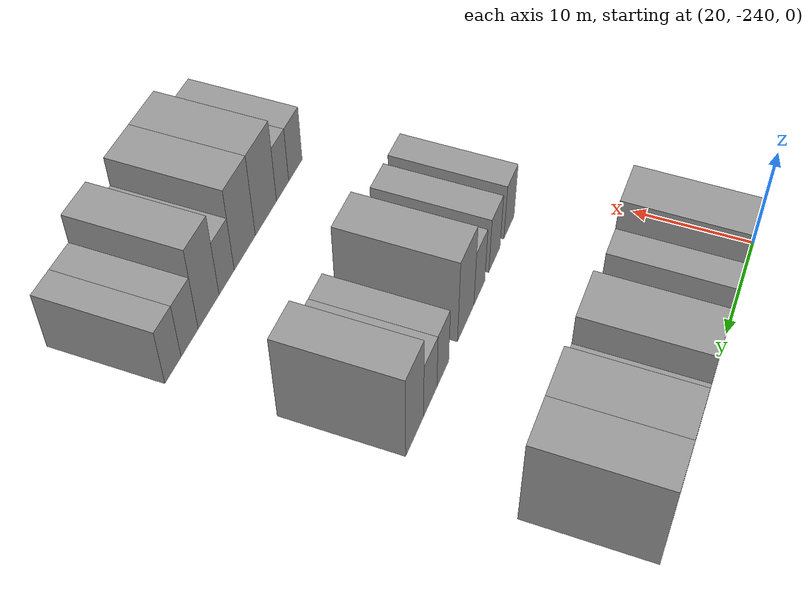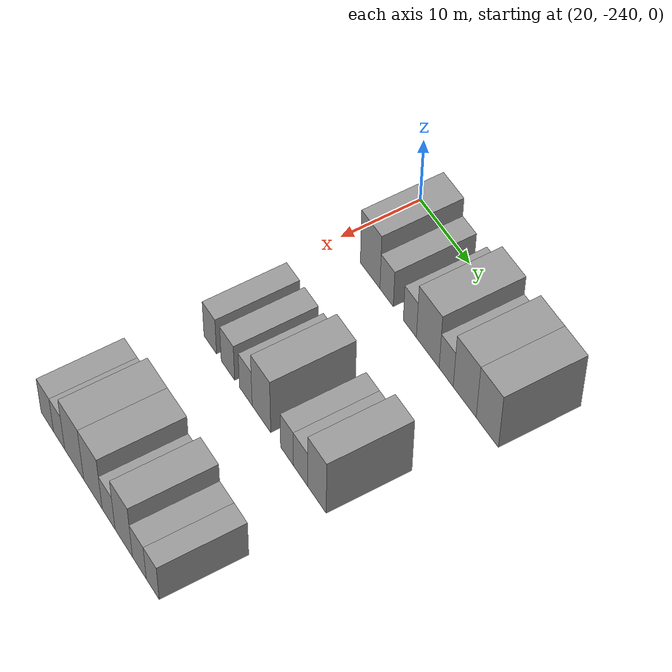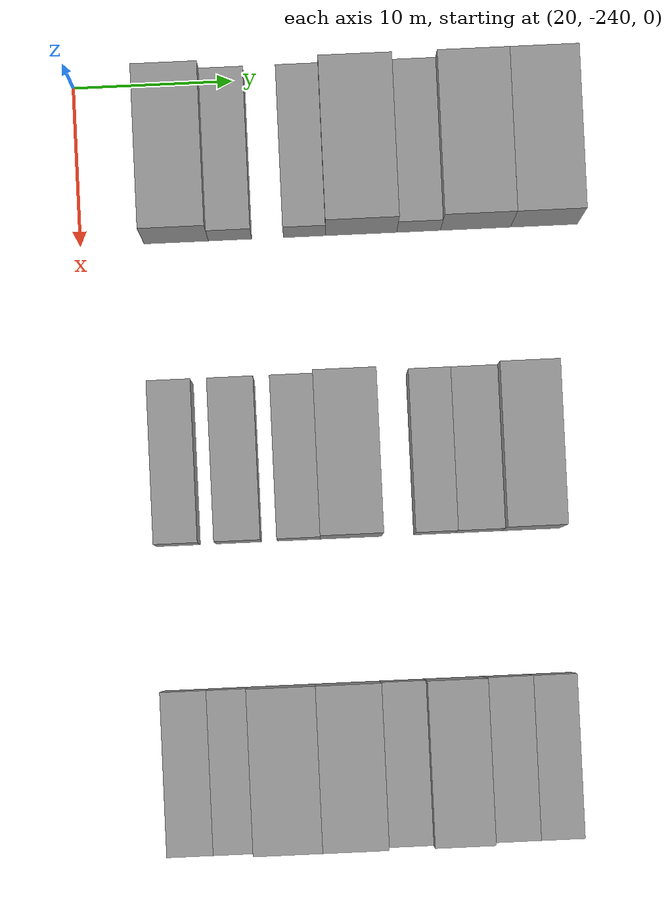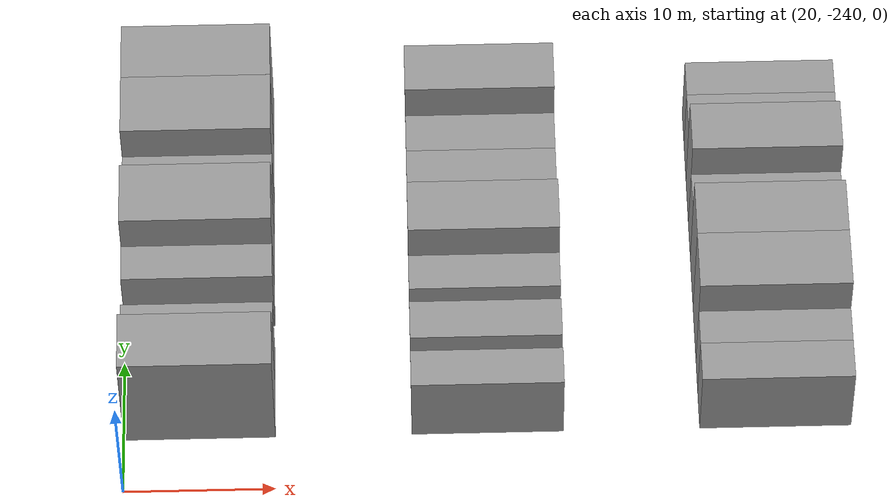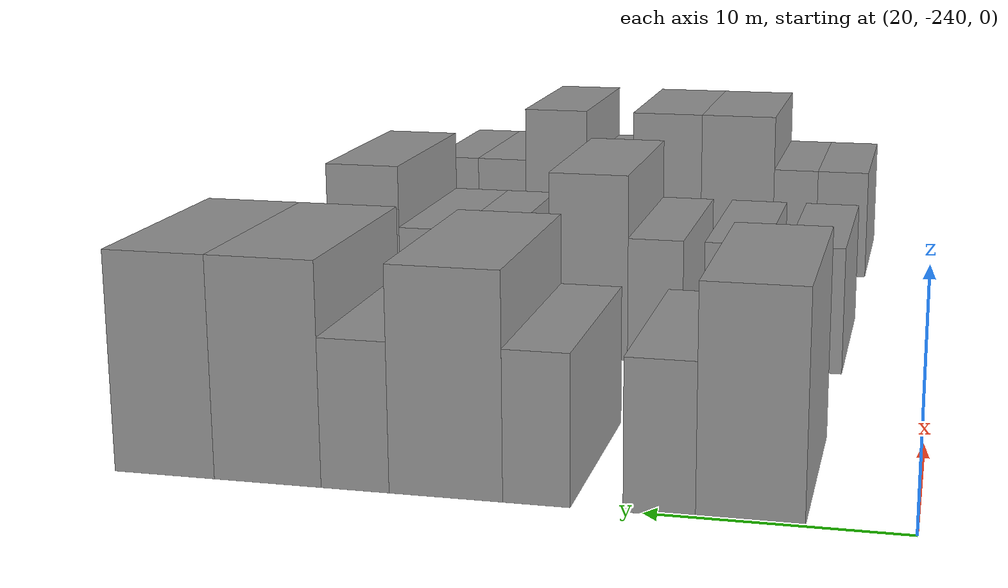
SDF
<sdf version="1.6">
 <world name="default">
  <model name="building_1">
   <static>1</static>
   <pose>25.0000 -233.9836 0 0.000000 0.000000 0.000000</pose>
   <link name="link">
    <pose>0 0 4.50 0 0 0</pose>
    <collision name="collision"><geometry><box><size>10.0000 4.0328 9.0000</size></box></geometry></collision>
    <visual name="visual">
     <cast_shadows>0</cast_shadows>
     <geometry><box><size>10.0000 4.0328 9.0000</size></box></geometry>
     <material>
      <script>
       <uri>model://grey_wall/materials/scripts</uri>
       <uri>model://grey_wall/materials/textures</uri>
       <name>vrc/grey_wall</name>
      </script>
     </material>
    </visual>
   </link>
  </model>
  <model name="building_2">
   <static>1</static>
   <pose>25.0000 -230.6096 0 0.000000 0.000000 0.000000</pose>
   <link name="link">
    <pose>0 0 3.00 0 0 0</pose>
    <collision name="collision"><geometry><box><size>10.0000 2.7152 6.0000</size></box></geometry></collision>
    <visual name="visual">
     <cast_shadows>0</cast_shadows>
     <geometry><box><size>10.0000 2.7152 6.0000</size></box></geometry>
     <material>
      <script>
       <uri>model://grey_wall/materials/scripts</uri>
       <uri>model://grey_wall/materials/textures</uri>
       <name>vrc/grey_wall</name>
      </script>
     </material>
    </visual>
   </link>
  </model>
  <model name="building_3">
   <static>1</static>
   <pose>25.0000 -225.9464 0 0.000000 0.000000 0.000000</pose>
   <link name="link">
    <pose>0 0 3.00 0 0 0</pose>
    <collision name="collision"><geometry><box><size>10.0000 2.6112 6.0000</size></box></geometry></collision>
    <visual name="visual">
     <cast_shadows>0</cast_shadows>
     <geometry><box><size>10.0000 2.6112 6.0000</size></box></geometry>
     <material>
      <script>
       <uri>model://grey_wall/materials/scripts</uri>
       <uri>model://grey_wall/materials/textures</uri>
       <name>vrc/grey_wall</name>
      </script>
     </material>
    </visual>
   </link>
  </model>
  <model name="building_4">
   <static>1</static>
   <pose>25.0000 -222.4008 0 0.000000 0.000000 0.000000</pose>
   <link name="link">
    <pose>0 0 4.50 0 0 0</pose>
    <collision name="collision"><geometry><box><size>10.0000 4.4799 9.0000</size></box></geometry></collision>
    <visual name="visual">
     <cast_shadows>0</cast_shadows>
     <geometry><box><size>10.0000 4.4799 9.0000</size></box></geometry>
     <material>
      <script>
       <uri>model://grey_wall/materials/scripts</uri>
       <uri>model://grey_wall/materials/textures</uri>
       <name>vrc/grey_wall</name>
      </script>
     </material>
    </visual>
   </link>
  </model>
  <model name="building_5">
   <static>1</static>
   <pose>25.0000 -218.7899 0 0.000000 0.000000 0.000000</pose>
   <link name="link">
    <pose>0 0 3.00 0 0 0</pose>
    <collision name="collision"><geometry><box><size>10.0000 2.7420 6.0000</size></box></geometry></collision>
    <visual name="visual">
     <cast_shadows>0</cast_shadows>
     <geometry><box><size>10.0000 2.7420 6.0000</size></box></geometry>
     <material>
      <script>
       <uri>model://grey_wall/materials/scripts</uri>
       <uri>model://grey_wall/materials/textures</uri>
       <name>vrc/grey_wall</name>
      </script>
     </material>
    </visual>
   </link>
  </model>
  <model name="building_6">
   <static>1</static>
   <pose>25.0000 -215.2181 0 0.000000 0.000000 0.000000</pose>
   <link name="link">
    <pose>0 0 4.50 0 0 0</pose>
    <collision name="collision"><geometry><box><size>10.0000 4.4015 9.0000</size></box></geometry></collision>
    <visual name="visual">
     <cast_shadows>0</cast_shadows>
     <geometry><box><size>10.0000 4.4015 9.0000</size></box></geometry>
     <material>
      <script>
       <uri>model://grey_wall/materials/scripts</uri>
       <uri>model://grey_wall/materials/textures</uri>
       <name>vrc/grey_wall</name>
      </script>
     </material>
    </visual>
   </link>
  </model>
  <model name="building_7">
   <static>1</static>
   <pose>25.0000 -210.9202 0 0.000000 0.000000 0.000000</pose>
   <link name="link">
    <pose>0 0 4.50 0 0 0</pose>
    <collision name="collision"><geometry><box><size>10.0000 4.1942 9.0000</size></box></geometry></collision>
    <visual name="visual">
     <cast_shadows>0</cast_shadows>
     <geometry><box><size>10.0000 4.1942 9.0000</size></box></geometry>
     <material>
      <script>
       <uri>model://grey_wall/materials/scripts</uri>
       <uri>model://grey_wall/materials/textures</uri>
       <name>vrc/grey_wall</name>
      </script>
     </material>
    </visual>
   </link>
  </model>
  <model name="building_124">
   <static>1</static>
   <pose>44.0000 -234.6560 0 0.000000 0.000000 0.000000</pose>
   <link name="link">
    <pose>0 0 3.00 0 0 0</pose>
    <collision name="collision"><geometry><box><size>10.0000 2.6880 6.0000</size></box></geometry></collision>
    <visual name="visual">
     <cast_shadows>0</cast_shadows>
     <geometry><box><size>10.0000 2.6880 6.0000</size></box></geometry>
     <material>
      <script>
       <uri>model://grey_wall/materials/scripts</uri>
       <uri>model://grey_wall/materials/textures</uri>
       <name>vrc/grey_wall</name>
      </script>
     </material>
    </visual>
   </link>
  </model>
  <model name="building_125">
   <static>1</static>
   <pose>44.0000 -230.8934 0 0.000000 0.000000 0.000000</pose>
   <link name="link">
    <pose>0 0 3.00 0 0 0</pose>
    <collision name="collision"><geometry><box><size>10.0000 2.8372 6.0000</size></box></geometry></collision>
    <visual name="visual">
     <cast_shadows>0</cast_shadows>
     <geometry><box><size>10.0000 2.8372 6.0000</size></box></geometry>
     <material>
      <script>
       <uri>model://grey_wall/materials/scripts</uri>
       <uri>model://grey_wall/materials/textures</uri>
       <name>vrc/grey_wall</name>
      </script>
     </material>
    </visual>
   </link>
  </model>
  <model name="building_126">
   <static>1</static>
   <pose>44.0000 -227.1511 0 0.000000 0.000000 0.000000</pose>
   <link name="link">
    <pose>0 0 3.00 0 0 0</pose>
    <collision name="collision"><geometry><box><size>10.0000 2.6474 6.0000</size></box></geometry></collision>
    <visual name="visual">
     <cast_shadows>0</cast_shadows>
     <geometry><box><size>10.0000 2.6474 6.0000</size></box></geometry>
     <material>
      <script>
       <uri>model://grey_wall/materials/scripts</uri>
       <uri>model://grey_wall/materials/textures</uri>
       <name>vrc/grey_wall</name>
      </script>
     </material>
    </visual>
   </link>
  </model>
  <model name="building_127">
   <static>1</static>
   <pose>44.0000 -223.9081 0 0.000000 0.000000 0.000000</pose>
   <link name="link">
    <pose>0 0 4.50 0 0 0</pose>
    <collision name="collision"><geometry><box><size>10.0000 3.8386 9.0000</size></box></geometry></collision>
    <visual name="visual">
     <cast_shadows>0</cast_shadows>
     <geometry><box><size>10.0000 3.8386 9.0000</size></box></geometry>
     <material>
      <script>
       <uri>model://grey_wall/materials/scripts</uri>
       <uri>model://grey_wall/materials/textures</uri>
       <name>vrc/grey_wall</name>
      </script>
     </material>
    </visual>
   </link>
  </model>
  <model name="building_128">
   <static>1</static>
   <pose>44.0000 -218.6937 0 0.000000 0.000000 0.000000</pose>
   <link name="link">
    <pose>0 0 3.00 0 0 0</pose>
    <collision name="collision"><geometry><box><size>10.0000 2.5903 6.0000</size></box></geometry></collision>
    <visual name="visual">
     <cast_shadows>0</cast_shadows>
     <geometry><box><size>10.0000 2.5903 6.0000</size></box></geometry>
     <material>
      <script>
       <uri>model://grey_wall/materials/scripts</uri>
       <uri>model://grey_wall/materials/textures</uri>
       <name>vrc/grey_wall</name>
      </script>
     </material>
    </visual>
   </link>
  </model>
  <model name="building_129">
   <static>1</static>
   <pose>44.0000 -215.9642 0 0.000000 0.000000 0.000000</pose>
   <link name="link">
    <pose>0 0 3.00 0 0 0</pose>
    <collision name="collision"><geometry><box><size>10.0000 2.8687 6.0000</size></box></geometry></collision>
    <visual name="visual">
     <cast_shadows>0</cast_shadows>
     <geometry><box><size>10.0000 2.8687 6.0000</size></box></geometry>
     <material>
      <script>
       <uri>model://grey_wall/materials/scripts</uri>
       <uri>model://grey_wall/materials/textures</uri>
       <name>vrc/grey_wall</name>
      </script>
     </material>
    </visual>
   </link>
  </model>
  <model name="building_130">
   <static>1</static>
   <pose>44.0000 -212.7077 0 0.000000 0.000000 0.000000</pose>
   <link name="link">
    <pose>0 0 4.50 0 0 0</pose>
    <collision name="collision"><geometry><box><size>10.0000 3.6442 9.0000</size></box></geometry></collision>
    <visual name="visual">
     <cast_shadows>0</cast_shadows>
     <geometry><box><size>10.0000 3.6442 9.0000</size></box></geometry>
     <material>
      <script>
       <uri>model://grey_wall/materials/scripts</uri>
       <uri>model://grey_wall/materials/textures</uri>
       <name>vrc/grey_wall</name>
      </script>
     </material>
    </visual>
   </link>
  </model>
  <model name="building_245">
   <static>1</static>
   <pose>63.0000 -234.5922 0 0.000000 0.000000 0.000000</pose>
   <link name="link">
    <pose>0 0 3.00 0 0 0</pose>
    <collision name="collision"><geometry><box><size>10.0000 2.8156 6.0000</size></box></geometry></collision>
    <visual name="visual">
     <cast_shadows>0</cast_shadows>
     <geometry><box><size>10.0000 2.8156 6.0000</size></box></geometry>
     <material>
      <script>
       <uri>model://grey_wall/materials/scripts</uri>
       <uri>model://grey_wall/materials/textures</uri>
       <name>vrc/grey_wall</name>
      </script>
     </material>
    </visual>
   </link>
  </model>
  <model name="building_246">
   <static>1</static>
   <pose>63.0000 -231.9451 0 0.000000 0.000000 0.000000</pose>
   <link name="link">
    <pose>0 0 3.00 0 0 0</pose>
    <collision name="collision"><geometry><box><size>10.0000 2.4787 6.0000</size></box></geometry></collision>
    <visual name="visual">
     <cast_shadows>0</cast_shadows>
     <geometry><box><size>10.0000 2.4787 6.0000</size></box></geometry>
     <material>
      <script>
       <uri>model://grey_wall/materials/scripts</uri>
       <uri>model://grey_wall/materials/textures</uri>
       <name>vrc/grey_wall</name>
      </script>
     </material>
    </visual>
   </link>
  </model>
  <model name="building_247">
   <static>1</static>
   <pose>63.0000 -228.6180 0 0.000000 0.000000 0.000000</pose>
   <link name="link">
    <pose>0 0 4.50 0 0 0</pose>
    <collision name="collision"><geometry><box><size>10.0000 4.1755 9.0000</size></box></geometry></collision>
    <visual name="visual">
     <cast_shadows>0</cast_shadows>
     <geometry><box><size>10.0000 4.1755 9.0000</size></box></geometry>
     <material>
      <script>
       <uri>model://grey_wall/materials/scripts</uri>
       <uri>model://grey_wall/materials/textures</uri>
       <name>vrc/grey_wall</name>
      </script>
     </material>
    </visual>
   </link>
  </model>
  <model name="building_248">
   <static>1</static>
   <pose>63.0000 -224.5358 0 0.000000 0.000000 0.000000</pose>
   <link name="link">
    <pose>0 0 4.50 0 0 0</pose>
    <collision name="collision"><geometry><box><size>10.0000 3.9888 9.0000</size></box></geometry></collision>
    <visual name="visual">
     <cast_shadows>0</cast_shadows>
     <geometry><box><size>10.0000 3.9888 9.0000</size></box></geometry>
     <material>
      <script>
       <uri>model://grey_wall/materials/scripts</uri>
       <uri>model://grey_wall/materials/textures</uri>
       <name>vrc/grey_wall</name>
      </script>
     </material>
    </visual>
   </link>
  </model>
  <model name="building_249">
   <static>1</static>
   <pose>63.0000 -221.1683 0 0.000000 0.000000 0.000000</pose>
   <link name="link">
    <pose>0 0 3.00 0 0 0</pose>
    <collision name="collision"><geometry><box><size>10.0000 2.7462 6.0000</size></box></geometry></collision>
    <visual name="visual">
     <cast_shadows>0</cast_shadows>
     <geometry><box><size>10.0000 2.7462 6.0000</size></box></geometry>
     <material>
      <script>
       <uri>model://grey_wall/materials/scripts</uri>
       <uri>model://grey_wall/materials/textures</uri>
       <name>vrc/grey_wall</name>
      </script>
     </material>
    </visual>
   </link>
  </model>
  <model name="building_250">
   <static>1</static>
   <pose>63.0000 -217.9680 0 0.000000 0.000000 0.000000</pose>
   <link name="link">
    <pose>0 0 4.50 0 0 0</pose>
    <collision name="collision"><geometry><box><size>10.0000 3.6543 9.0000</size></box></geometry></collision>
    <visual name="visual">
     <cast_shadows>0</cast_shadows>
     <geometry><box><size>10.0000 3.6543 9.0000</size></box></geometry>
     <material>
      <script>
       <uri>model://grey_wall/materials/scripts</uri>
       <uri>model://grey_wall/materials/textures</uri>
       <name>vrc/grey_wall</name>
      </script>
     </material>
    </visual>
   </link>
  </model>
  <model name="building_251">
   <static>1</static>
   <pose>63.0000 -214.7028 0 0.000000 0.000000 0.000000</pose>
   <link name="link">
    <pose>0 0 3.00 0 0 0</pose>
    <collision name="collision"><geometry><box><size>10.0000 2.8761 6.0000</size></box></geometry></collision>
    <visual name="visual">
     <cast_shadows>0</cast_shadows>
     <geometry><box><size>10.0000 2.8761 6.0000</size></box></geometry>
     <material>
      <script>
       <uri>model://grey_wall/materials/scripts</uri>
       <uri>model://grey_wall/materials/textures</uri>
       <name>vrc/grey_wall</name>
      </script>
     </material>
    </visual>
   </link>
  </model>
  <model name="building_252">
   <static>1</static>
   <pose>63.0000 -211.9359 0 0.000000 0.000000 0.000000</pose>
   <link name="link">
    <pose>0 0 3.00 0 0 0</pose>
    <collision name="collision"><geometry><box><size>10.0000 2.6578 6.0000</size></box></geometry></collision>
    <visual name="visual">
     <cast_shadows>0</cast_shadows>
     <geometry><box><size>10.0000 2.6578 6.0000</size></box></geometry>
     <material>
      <script>
       <uri>model://grey_wall/materials/scripts</uri>
       <uri>model://grey_wall/materials/textures</uri>
       <name>vrc/grey_wall</name>
      </script>
     </material>
    </visual>
   </link>
  </model>
 </world>
</sdf>
